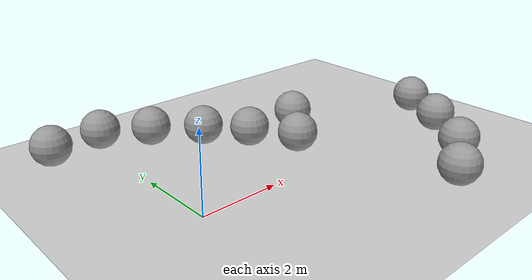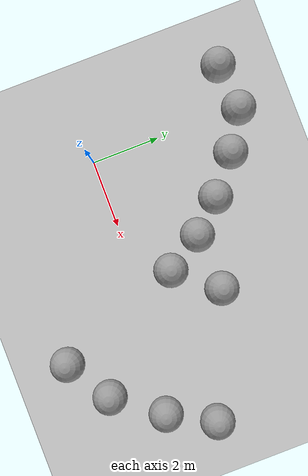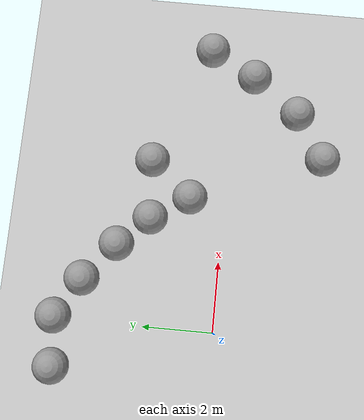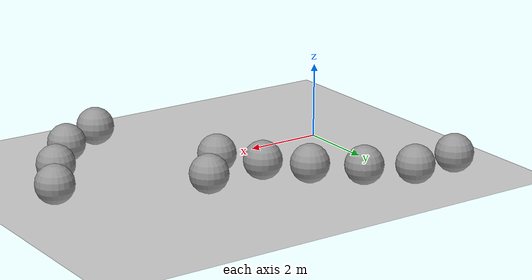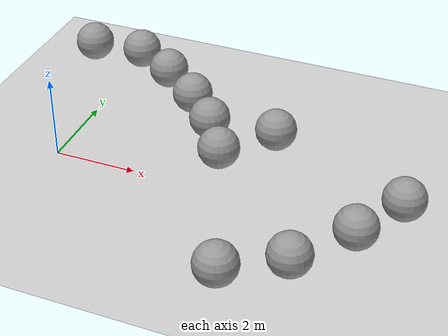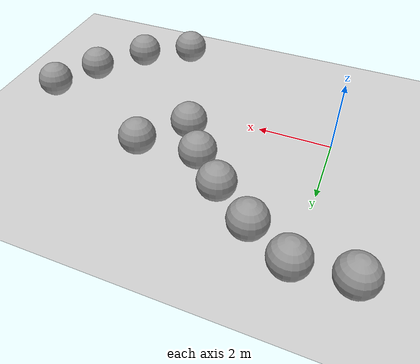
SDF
<sdf version="1.6">
 <world name="default">
  <light name="sun" type="directional">
   <pose>0 0 10 0 -0 0</pose>
   <diffuse>0.8 0.8 0.8 1</diffuse>
   <specular>0.1 0.1 0.1 1</specular>
   <attenuation>
    <range>1000</range>
    <constant>0.9</constant>
    <linear>0.01</linear>
    <quadratic>0.001</quadratic>
   </attenuation>
   <direction>-0.5 0.5 -1</direction>
  </light>
  <model name="ground_plane">
   <static>1</static>
   <link name="link">
    <collision name="collision">
     <geometry><plane><normal>0 0 1</normal><size>100 100</size></plane></geometry>
     <surface><friction><ode><mu>100</mu><mu2>50</mu2></ode></friction></surface>
    </collision>
    <visual name="visual">
     <cast_shadows>0</cast_shadows>
     <geometry><plane><normal>0 0 1</normal><size>100 100</size></plane></geometry>
     <material>
      <script><uri>file://media/materials/scripts/gazebo.material</uri><name>Gazebo/Grey</name></script>
     </material>
    </visual>
   </link>
  </model>
  <gravity>0 0 -9.8</gravity>
  <magnetic_field>6e-06 2.3e-05 -4.2e-05</magnetic_field>
  <atmosphere type="adiabatic"/>
  <physics name="default_physics" default="0" type="ode">
   <max_step_size>0.001</max_step_size>
   <real_time_factor>1</real_time_factor>
   <real_time_update_rate>1000</real_time_update_rate>
  </physics>
  <scene><ambient>0.4 0.4 0.4 1</ambient><background>0.7 0.7 0.7 1</background><shadows>1</shadows></scene>
  <spherical_coordinates>
   <surface_model>EARTH_WGS84</surface_model>
   <latitude_deg>0</latitude_deg>
   <longitude_deg>0</longitude_deg>
   <elevation>0</elevation>
   <heading_deg>0</heading_deg>
  </spherical_coordinates>
  <model name="unit_sphere_0_0">
   <pose>0.102787 4.43815 0.5 0 -0 0</pose>
   <link name="link">
    <inertial>
     <mass>1</mass>
     <inertia><ixx>0.1</ixx><ixy>0</ixy><ixz>0</ixz><iyy>0.1</iyy><iyz>0</iyz><izz>0.1</izz></inertia>
    </inertial>
    <collision name="collision"><geometry><sphere><radius>0.5</radius></sphere></geometry></collision>
    <visual name="visual">
     <geometry><sphere><radius>0.5</radius></sphere></geometry>
     <material>
      <script><name>Gazebo/Grey</name><uri>file://media/materials/scripts/gazebo.material</uri></script>
     </material>
    </visual>
   </link>
  </model>
  <model name="unit_sphere_0_1">
   <pose>1.1967 3.77885 0.5 0 -0 0</pose>
   <link name="link">
    <inertial>
     <mass>1</mass>
     <inertia><ixx>0.1</ixx><ixy>0</ixy><ixz>0</ixz><iyy>0.1</iyy><iyz>0</iyz><izz>0.1</izz></inertia>
    </inertial>
    <collision name="collision"><geometry><sphere><radius>0.5</radius></sphere></geometry></collision>
    <visual name="visual">
     <geometry><sphere><radius>0.5</radius></sphere></geometry>
     <material>
      <script><name>Gazebo/Grey</name><uri>file://media/materials/scripts/gazebo.material</uri></script>
     </material>
    </visual>
   </link>
  </model>
  <model name="unit_sphere_0_2">
   <pose>2.24121 2.92077 0.5 0 -0 0</pose>
   <link name="link">
    <inertial>
     <mass>1</mass>
     <inertia><ixx>0.1</ixx><ixy>0</ixy><ixz>0</ixz><iyy>0.1</iyy><iyz>0</iyz><izz>0.1</izz></inertia>
    </inertial>
    <collision name="collision"><geometry><sphere><radius>0.5</radius></sphere></geometry></collision>
    <visual name="visual">
     <geometry><sphere><radius>0.5</radius></sphere></geometry>
     <material>
      <script><name>Gazebo/Grey</name><uri>file://media/materials/scripts/gazebo.material</uri></script>
     </material>
    </visual>
   </link>
  </model>
  <model name="unit_sphere_0_3">
   <pose>3.06902 2.05051 0.5 0 -0 0</pose>
   <link name="link">
    <inertial>
     <mass>1</mass>
     <inertia><ixx>0.1</ixx><ixy>0</ixy><ixz>0</ixz><iyy>0.1</iyy><iyz>0</iyz><izz>0.1</izz></inertia>
    </inertial>
    <collision name="collision"><geometry><sphere><radius>0.5</radius></sphere></geometry></collision>
    <visual name="visual">
     <geometry><sphere><radius>0.5</radius></sphere></geometry>
     <material>
      <script><name>Gazebo/Grey</name><uri>file://media/materials/scripts/gazebo.material</uri></script>
     </material>
    </visual>
   </link>
  </model>
  <model name="unit_sphere_0_4">
   <pose>3.74426 0.982583 0.5 0 -0 0</pose>
   <link name="link">
    <inertial>
     <mass>1</mass>
     <inertia><ixx>0.1</ixx><ixy>0</ixy><ixz>0</ixz><iyy>0.1</iyy><iyz>0</iyz><izz>0.1</izz></inertia>
    </inertial>
    <collision name="collision"><geometry><sphere><radius>0.5</radius></sphere></geometry></collision>
    <visual name="visual">
     <geometry><sphere><radius>0.5</radius></sphere></geometry>
     <material>
      <script><name>Gazebo/Grey</name><uri>file://media/materials/scripts/gazebo.material</uri></script>
     </material>
    </visual>
   </link>
  </model>
  <model name="unit_sphere_0_5">
   <pose>5.1953 -2.7109 0.5 0 -0 0</pose>
   <link name="link">
    <inertial>
     <mass>1</mass>
     <inertia><ixx>0.1</ixx><ixy>0</ixy><ixz>0</ixz><iyy>0.1</iyy><iyz>0</iyz><izz>0.1</izz></inertia>
    </inertial>
    <collision name="collision"><geometry><sphere><radius>0.5</radius></sphere></geometry></collision>
    <visual name="visual">
     <geometry><sphere><radius>0.5</radius></sphere></geometry>
     <material>
      <script><name>Gazebo/Grey</name><uri>file://media/materials/scripts/gazebo.material</uri></script>
     </material>
    </visual>
   </link>
  </model>
  <model name="unit_sphere_0_6">
   <pose>-1.25179 4.33089 0.5 0 -0 0</pose>
   <link name="link">
    <inertial>
     <mass>1</mass>
     <inertia><ixx>0.1</ixx><ixy>0</ixy><ixz>0</ixz><iyy>0.1</iyy><iyz>0</iyz><izz>0.1</izz></inertia>
    </inertial>
    <collision name="collision"><geometry><sphere><radius>0.5</radius></sphere></geometry></collision>
    <visual name="visual">
     <geometry><sphere><radius>0.5</radius></sphere></geometry>
     <material>
      <script><name>Gazebo/Grey</name><uri>file://media/materials/scripts/gazebo.material</uri></script>
     </material>
    </visual>
   </link>
  </model>
  <model name="unit_sphere_0_7">
   <pose>8.2145 0.696954 0.5 0 -0 0</pose>
   <link name="link">
    <inertial>
     <mass>1</mass>
     <inertia><ixx>0.1</ixx><ixy>0</ixy><ixz>0</ixz><iyy>0.1</iyy><iyz>0</iyz><izz>0.1</izz></inertia>
    </inertial>
    <collision name="collision"><geometry><sphere><radius>0.5</radius></sphere></geometry></collision>
    <visual name="visual">
     <geometry><sphere><radius>0.5</radius></sphere></geometry>
     <material>
      <script><name>Gazebo/Grey</name><uri>file://media/materials/scripts/gazebo.material</uri></script>
     </material>
    </visual>
   </link>
  </model>
  <model name="unit_sphere_0_8">
   <pose>6.48774 -1.91135 0.5 0 -0 0</pose>
   <link name="link">
    <inertial>
     <mass>1</mass>
     <inertia><ixx>0.1</ixx><ixy>0</ixy><ixz>0</ixz><iyy>0.1</iyy><iyz>0</iyz><izz>0.1</izz></inertia>
    </inertial>
    <collision name="collision"><geometry><sphere><radius>0.5</radius></sphere></geometry></collision>
    <visual name="visual">
     <geometry><sphere><radius>0.5</radius></sphere></geometry>
     <material>
      <script><name>Gazebo/Grey</name><uri>file://media/materials/scripts/gazebo.material</uri></script>
     </material>
    </visual>
   </link>
  </model>
  <model name="unit_sphere_0_9">
   <pose>7.49965 -0.594832 0.5 0 -0 0</pose>
   <link name="link">
    <inertial>
     <mass>1</mass>
     <inertia><ixx>0.1</ixx><ixy>0</ixy><ixz>0</ixz><iyy>0.1</iyy><iyz>0</iyz><izz>0.1</izz></inertia>
    </inertial>
    <collision name="collision"><geometry><sphere><radius>0.5</radius></sphere></geometry></collision>
    <visual name="visual">
     <geometry><sphere><radius>0.5</radius></sphere></geometry>
     <material>
      <script><name>Gazebo/Grey</name><uri>file://media/materials/scripts/gazebo.material</uri></script>
     </material>
    </visual>
   </link>
  </model>
  <model name="unit_sphere_0_10">
   <pose>4.73486 2.15427 0.5 0 -0 0</pose>
   <link name="link">
    <inertial>
     <mass>1</mass>
     <inertia><ixx>0.1</ixx><ixy>0</ixy><ixz>0</ixz><iyy>0.1</iyy><iyz>0</iyz><izz>0.1</izz></inertia>
    </inertial>
    <collision name="collision"><geometry><sphere><radius>0.5</radius></sphere></geometry></collision>
    <visual name="visual">
     <geometry><sphere><radius>0.5</radius></sphere></geometry>
     <material>
      <script><name>Gazebo/Grey</name><uri>file://media/materials/scripts/gazebo.material</uri></script>
     </material>
    </visual>
   </link>
  </model>
 </world>
</sdf>
